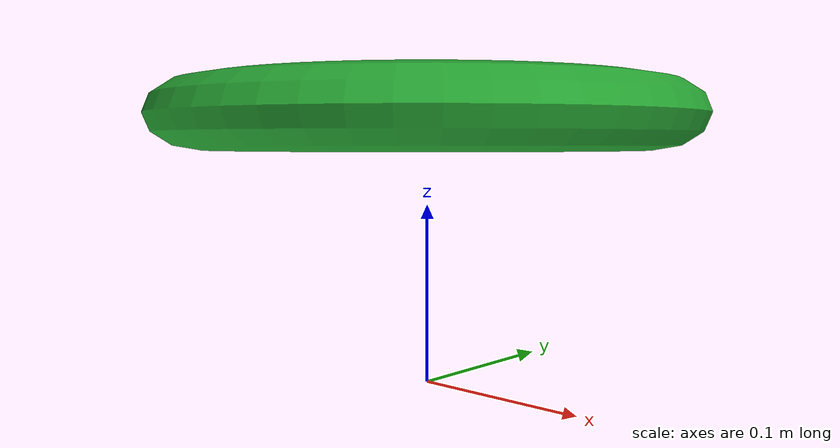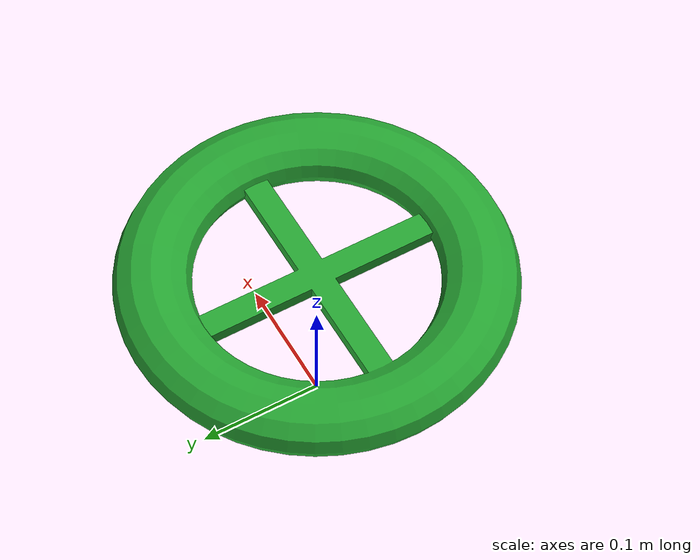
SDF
<?xml version='1.0'?>
<sdf version='1.3'>
  <model name='valve'>
    <static>true</static>
    <link name='link'>
      <collision name="collision">
        <pose>0 0 0.15 0 0 0</pose>
        <geometry>
          <cylinder>
            <radius>0.08</radius>
            <length>0.2</length>
          </cylinder>
        </geometry>
      </collision>

      <visual name="visual">
        <pose>0 0 0.15 0 0 0</pose>
        <geometry>
          <mesh>
            <scale>1.0 1.0 1.0</scale>
            <uri>model://vrc_valve/meshes/vrc_valve.dae</uri>
          </mesh>
        </geometry>
        <material>
          <script>
            <uri>file://media/materials/scripts</uri>
            <name>Gazebo/Green</name>
          </script>
        </material>
      </visual>
    </link>
  </model>
</sdf>
